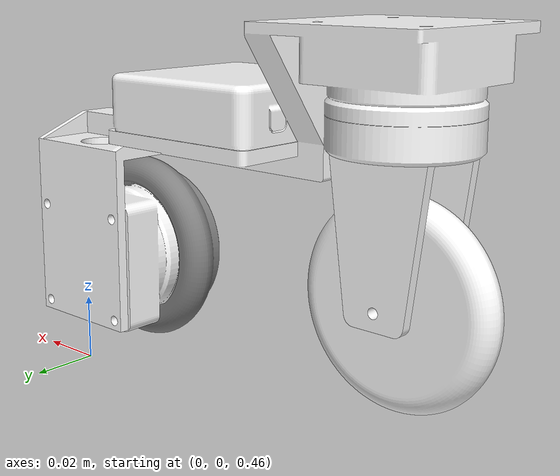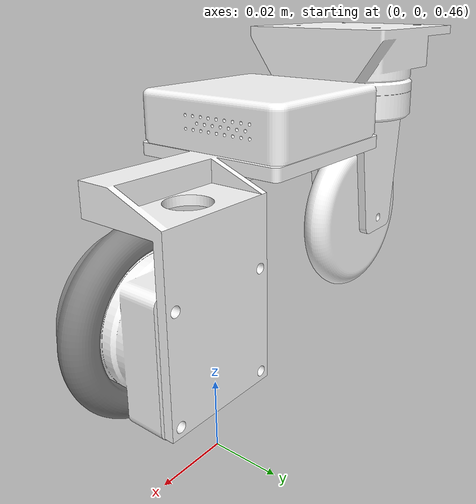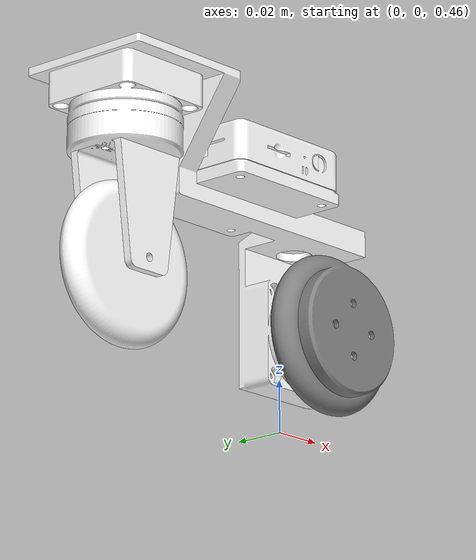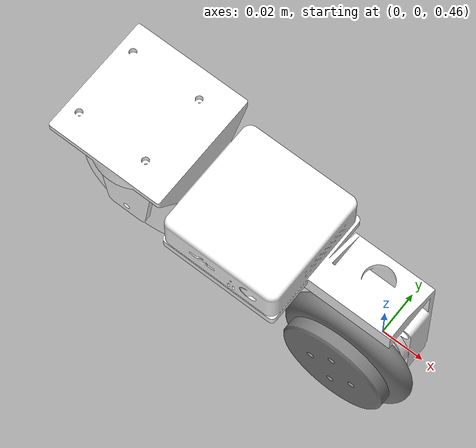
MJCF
<mujoco model="HBP_mjcf scene">
  <include file="HBP_mjcf.xml"/>

  <statistic center="0 0 0.037500" extent="0.800000"/>

  <visual>
    <headlight diffuse="0.6 0.6 0.6" ambient="0.3 0.3 0.3" specular="0 0 0"/>
    <rgba haze="0.15 0.25 0.35 1"/>
    <global azimuth="-130" elevation="-20"/>
  </visual>

  <asset>
    <texture type="skybox" builtin="gradient" rgb1="0.3 0.5 0.7" rgb2="0 0 0" width="512" height="3072"/>
    <texture type="2d" name="groundplane" builtin="checker" mark="edge" rgb1="0.2 0.3 0.4" rgb2="0.1 0.2 0.3"
      markrgb="0.8 0.8 0.8" width="300" height="300"/>
    <material name="groundplane" texture="groundplane" texuniform="true" texrepeat="5 5" reflectance="0.2"/>
  </asset>

  <worldbody>
    <!-- Ground/Environment -->
    <light pos="0 0 1.5" dir="0 0 -1" directional="true"/>
    <geom name="floor" size="0 0 0.05" type="plane" material="groundplane" group="0"/>
  </worldbody>

</mujoco>

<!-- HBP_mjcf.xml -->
<mujoco model="HBP_mjcf">
  <compiler angle="radian" meshdir="assets" autolimits="true" />

  <option timestep="0.002" iterations="30" cone="elliptic" impratio="100" />

  <default>
    <!-- textset -->
    <joint damping="0.1" armature="0.01" frictionloss="0.005"/>
    <position inheritrange="1" timeconst="0.01"/>
    <geom friction="0.4" margin="0.001" condim="3"/>
    <!-- text�[text�Fgroup=0 -->
    <default class="collision">
      <geom group="0"/>
    </default>
    <!-- text�Fgroup=1(text) -->
    <default class="visual">
      <geom contype="0" conaffinity="0" group="1"/>
    </default>
  </default>

  <asset>
    <material name="metal" rgba=".9 .95 .95 1" />
    <material name="black" rgba="0 0 0 1" />
    <material name="white" rgba="1 1 1 1" />
    <material name="gray" rgba="0.671705 0.692426 0.774270 1" />

    <mesh name="body" file="body.obj" />
    <mesh name="tire_back" file="tire_back.obj" />
    <mesh name="tire_holder" file="tire_holder.obj" />
    <mesh name="tire_top" file="tire_top.obj" />
  </asset>

  <worldbody>
    <body name="body_obj" pos="0 0 0.5">
      <freejoint />
      <geom class="visual" type="mesh" mesh="body" rgba="1.0 1.0 1.0 1.0" />
      <geom type="mesh" mesh="body" group="0" />
      <body name="tire_back" pos="0.0 -0.03 -0.0075">
        <joint name="tire_back_pitch" type="hinge" pos="0 0 0" axis="0 1 0" range="-3.14159 3.14159" limited="true" margin="0.0035" armature="0.01" frictionloss="0.005" damping="0.18" />
        <inertial pos="0 0.002773 -0" mass="0.0175" fullinertia="0.00000522 0.00000887 0.0000052 0 0 0" />
        <geom class="visual" type="mesh" mesh="tire_back" />
        <geom type="mesh" mesh="tire_back" group="0" />
      </body>
      <body name="tire_holder" pos="-0.105 -0.0205 0.0365">
        <joint name="tire_holder_yaw" type="hinge" pos="0 0 0" axis="0 0 1" range="-3.14159 3.14159" limited="true" margin="0.0035" armature="0.01" frictionloss="0.005" damping="0.18" />
        <inertial pos="-0 -0 -0.01725" mass="0.008584" fullinertia="0.0000039 0.00000349 0.000003 0 0 0" />
        <geom class="visual" type="mesh" mesh="tire_holder" rgba="1.0 1.0 1.0 1.0"/>
        <geom type="mesh" mesh="tire_holder" group="0" />
        <body name="tire_top" pos="0.0 -0.0055 -0.04">
          <joint name="tire_top_pitch" type="hinge" pos="0 0 0" axis="0 1 0" range="-3.14159 3.14159" limited="true" margin="0.0035" armature="0.01" frictionloss="0.005" damping="0.18" />
          <inertial pos="0 0.005508 0" mass="0.0185" fullinertia="0.00000422 0.00000724 0.00000422 0 0 0" />
          <geom class="visual" type="mesh" mesh="tire_top" rgba="1.0 1.0 1.0 1.0" />
          <geom type="mesh" mesh="tire_top" group="0" />
        </body>
      </body>
    </body>
  </worldbody>

  <actuator>
    <position name="tire_back_actuator" joint="tire_back_pitch" gear="1" kp="100" kv="1" forcerange="-1.37 1.37" forcelimited="true"/>
    <position name="tire_holder_actuator" joint="tire_holder_yaw" gear="1" kp="100" kv="1" forcerange="-1.37 1.37" forcelimited="true"/>
    <position name="tire_top_actuator" joint="tire_top_pitch" gear="1" kp="100" kv="1" forcerange="-1.37 1.37" forcelimited="true"/>
  </actuator>

  <sensor>
    <!-- Add sensors here if needed -->
  </sensor>
</mujoco>
